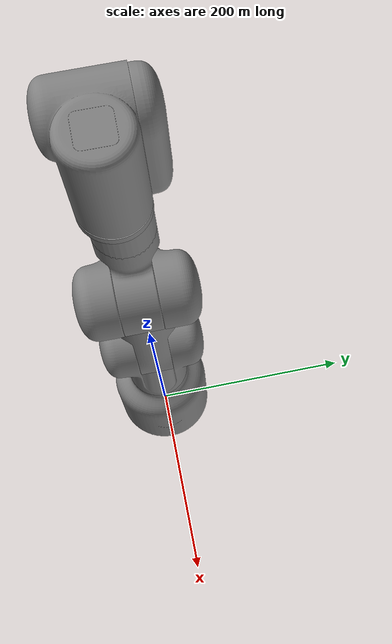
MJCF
<mujoco model="firefighter">
    <compiler angle="radian" meshdir="../meshes_mujoco/" />
    <size njmax="500" nconmax="100" />
    <asset>
        <mesh name="base" file="base.stl" />
        <mesh name="joint1" file="joint1.stl" />
        <mesh name="joint2" file="joint2.stl" />
        <mesh name="joint3" file="joint3.stl" />
        <mesh name="joint4" file="joint4.stl" />
        <mesh name="joint5" file="joint5.stl" />
        <mesh name="joint6" file="joint6.stl" />
        <mesh name="joint7" file="joint7.stl" />
    </asset>
    <worldbody>
        <geom type="mesh" contype="0" conaffinity="0" group="1" mesh="base" />
        <geom type="mesh" mesh="base" />
        <body name="joint1" pos="0 0 99">
            <inertial pos="-0.779106 -2.36462e-05 58.4904" quat="0.999969 8.6787e-06 0.00790243 4.0482e-06" mass="4.01213e+08" diaginertia="5.70624e+11 4.22606e+11 3.02666e+11" />
            <joint name="joint1_to_base" pos="0 0 0" axis="0 0 1" limited="true" range="-3.1 3.1" />
            <geom pos="0 0 -0.08" type="mesh" contype="0" conaffinity="0" group="1" mesh="joint1" />
            <geom pos="0 0 -0.08" type="mesh" mesh="joint1" />
            <body name="joint2" pos="0 0 80" quat="0.707105 -0.707108 0 0">
                <inertial pos="-0.277417 -70.1136 -2.88245e-05" quat="0.499311 0.500689 -0.49931 0.500688" mass="4.13119e+08" diaginertia="1.07166e+12 1.04682e+12 1.70944e+11" />
                <joint name="joint2_to_joint1" pos="0 0 0" axis="0 0 1" limited="true" range="-1.42 2.26" />
                <geom quat="9.38184e-07 0.707105 -0.707108 -9.38187e-07" type="mesh" contype="0" conaffinity="0" group="1" mesh="joint2" />
                <geom quat="9.38184e-07 0.707105 -0.707108 -9.38187e-07" type="mesh" mesh="joint2" />
                <body name="joint3" pos="0 -125 0" quat="0.707105 0.707108 0 0">
                    <inertial pos="17.5987 -8.8179e-05 44.3613" quat="0.932342 8.21665e-06 0.361579 7.81415e-07" mass="3.59824e+08" diaginertia="4.38894e+11 3.01399e+11 2.82728e+11" />
                    <joint name="joint3_to_joint2" pos="0 0 0" axis="0 0 1" limited="true" range="-3.1 3.1" />
                    <geom pos="0 0 0.038" type="mesh" contype="0" conaffinity="0" group="1" mesh="joint3" />
                    <geom pos="0 0 0.038" type="mesh" mesh="joint3" />
                    <body name="joint4" pos="30 0 58" quat="9.38184e-07 -9.38187e-07 -0.707108 0.707105">
                        <inertial pos="15.8364 -16.2784 0.00081027" quat="0.296941 0.641726 -0.296949 0.641744" mass="1.79594e+08" diaginertia="1.72156e+11 1.50613e+11 6.14322e+10" />
                        <joint name="joint4_to_joint3" pos="0 0 0" axis="0 0 1" limited="true" range="-3.0543 0.2617" />
                        <geom quat="0.707105 0 0 -0.707108" type="mesh" contype="0" conaffinity="0" group="1" mesh="joint4" />
                        <geom quat="0.707105 0 0 -0.707108" type="mesh" mesh="joint4" />
                        <body name="joint5" pos="30 -56 0" quat="9.38184e-07 9.38187e-07 0.707105 -0.707108">
                            <inertial pos="-8.69605e-05 10.1793 73.1766" quat="0.990747 -0.135723 -1.10623e-06 -1.28904e-06" mass="3.06707e+08" diaginertia="6.58582e+11 6.52921e+11 1.02085e+11" />
                            <joint name="joint5_to_joint4" pos="0 0 0" axis="0 0 1" limited="true" range="-3.1 3.1" />
                            <geom pos="0 0 -0.069" type="mesh" contype="0" conaffinity="0" group="1" mesh="joint5" />
                            <geom pos="0 0 -0.069" type="mesh" mesh="joint5" />
                            <body name="joint6" pos="0 25 150" quat="0.707105 0.707108 0 0">
                                <inertial pos="22.6284 0.64977 26.8628" quat="-0.0344706 0.756414 0.0294201 0.652521" mass="2.77749e+08" diaginertia="2.58265e+11 1.95301e+11 1.78199e+11" />
                                <joint name="joint6_to_joint5" pos="0 0 0" axis="0 0 1" limited="true" range="-0.0349 2.9321" />
                                <geom pos="0 0 -0.025" quat="0.707105 0 0 -0.707108" type="mesh" contype="0" conaffinity="0" group="1" mesh="joint6" />
                                <geom pos="0 0 -0.025" quat="0.707105 0 0 -0.707108" type="mesh" mesh="joint6" />
                                <body name="joint7" pos="38 -43 25" quat="0.707105 0.707108 0 0">
                                    <inertial pos="-4.21473e-08 -1.03456e-08 2.748" quat="0.570522 0.417738 -0.570522 0.417738" mass="1.02958e+07" diaginertia="3.21225e+09 1.63208e+09 1.63208e+09" />
                                    <joint name="joint7_to_joint6" pos="0 0 0" axis="0 0 1" limited="true" range="-3.1 3.1" />
                                    <geom pos="0 0 -0.002" quat="0.707105 0 0 -0.707108" type="mesh" contype="0" conaffinity="0" group="1" mesh="joint7" />
                                    <geom pos="0 0 -0.002" quat="0.707105 0 0 -0.707108" type="mesh" mesh="joint7" />
                                </body>
                            </body>
                        </body>
                    </body>
                </body>
            </body>
        </body>
    </worldbody>
</mujoco>
